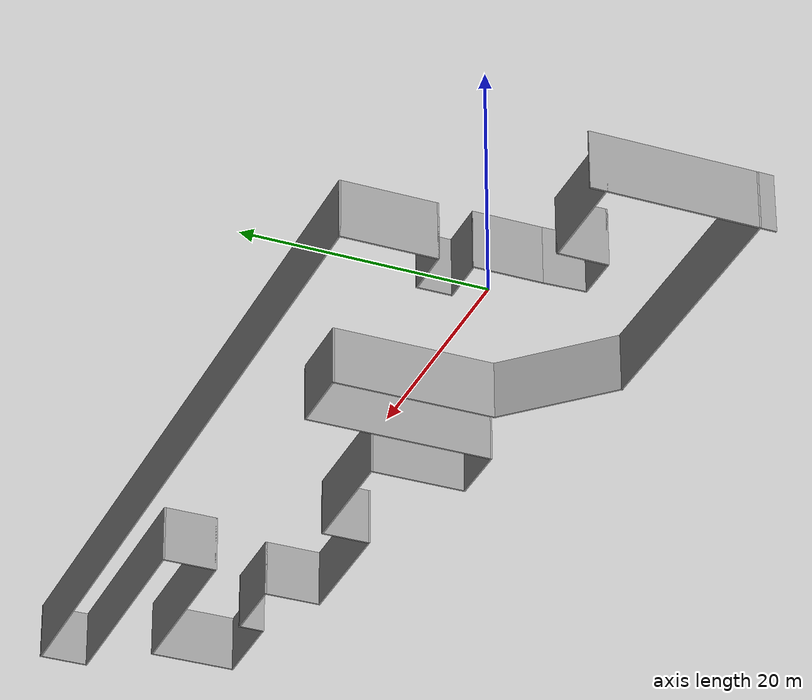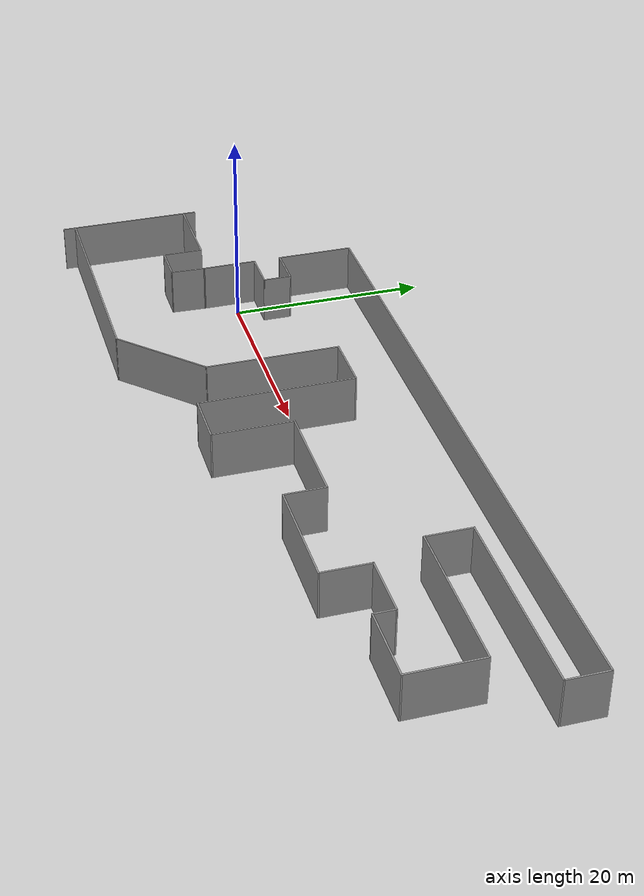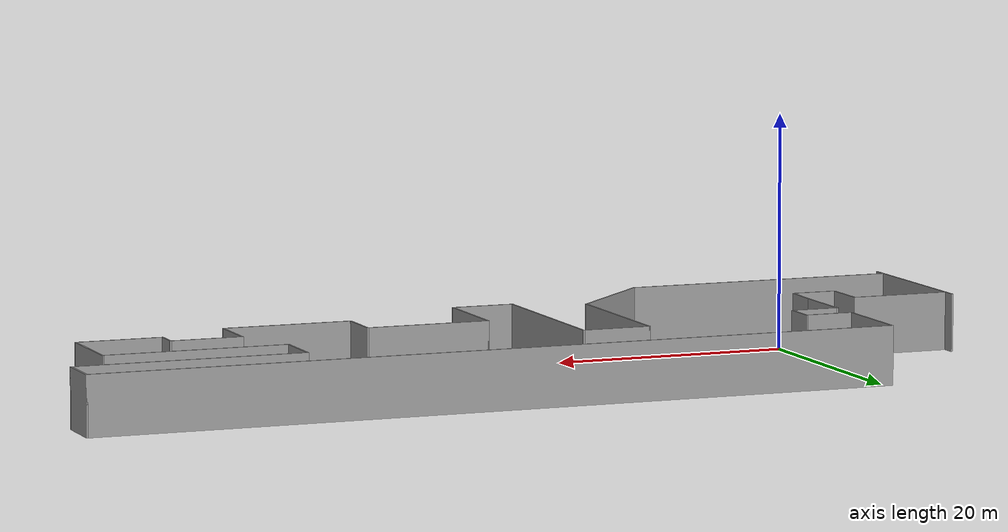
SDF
<?xml version='1.0'?>
<sdf version='1.7'>
  <model name='default'>
    <pose>24.2323 -0.3982 0 0 -0 0</pose>
    <link name='Wall_0'>
      <collision name='Wall_0_Collision'>
        <geometry>
          <box>
            <size>5.75 0.15 5.0</size>
          </box>
        </geometry>
        <pose>0 0 1.25 0 -0 0</pose>
      </collision>
      <visual name='Wall_0_Visual'>
        <pose>0 0 1.25 0 -0 0</pose>
        <geometry>
          <box>
            <size>5.75 0.15 5.0</size>
          </box>
        </geometry>
        <material>
          <script>
            <uri>file://media/materials/scripts/gazebo.material</uri>
            <name>Gazebo/Grey</name>
          </script>
          <ambient>1 1 1 1</ambient>
        </material>
        <meta>
          <layer>0</layer>
        </meta>
      </visual>
      <pose>-28.2523 0.5382 0 0 -0 1.5708</pose>
    </link>
    <link name='Wall_1'>
      <collision name='Wall_1_Collision'>
        <geometry>
          <box>
            <size>4.25 0.15 5.0</size>
          </box>
        </geometry>
        <pose>0 0 1.25 0 -0 0</pose>
      </collision>
      <visual name='Wall_1_Visual'>
        <pose>0 0 1.25 0 -0 0</pose>
        <geometry>
          <box>
            <size>4.25 0.15 5.0</size>
          </box>
        </geometry>
        <material>
          <script>
            <uri>file://media/materials/scripts/gazebo.material</uri>
            <name>Gazebo/Grey</name>
          </script>
          <ambient>1 1 1 1</ambient>
        </material>
        <meta>
          <layer>0</layer>
        </meta>
      </visual>
      <pose>-26.2023 3.3382 0 0 -0 0</pose>
    </link>
    <link name='Wall_10'>
      <collision name='Wall_10_Collision'>
        <geometry>
          <box>
            <size>7.5 0.15 5.0</size>
          </box>
        </geometry>
        <pose>0 0 1.25 0 -0 0</pose>
      </collision>
      <visual name='Wall_10_Visual'>
        <pose>0 0 1.25 0 -0 0</pose>
        <geometry>
          <box>
            <size>7.5 0.15 5.0</size>
          </box>
        </geometry>
        <material>
          <script>
            <uri>file://media/materials/scripts/gazebo.material</uri>
            <name>Gazebo/Grey</name>
          </script>
          <ambient>1 1 1 1</ambient>
        </material>
        <meta>
          <layer>0</layer>
        </meta>
      </visual>
      <pose>36.8477 1.6632 0 0 -0 -1.5708</pose>
    </link>
    <link name='Wall_11'>
      <collision name='Wall_11_Collision'>
        <geometry>
          <box>
            <size>7.5 0.15 5.0</size>
          </box>
        </geometry>
        <pose>0 0 1.25 0 -0 0</pose>
      </collision>
      <visual name='Wall_11_Visual'>
        <pose>0 0 1.25 0 -0 0</pose>
        <geometry>
          <box>
            <size>7.5 0.15 5.0</size>
          </box>
        </geometry>
        <material>
          <script>
            <uri>file://media/materials/scripts/gazebo.material</uri>
            <name>Gazebo/Grey</name>
          </script>
          <ambient>1 1 1 1</ambient>
        </material>
        <meta>
          <layer>0</layer>
        </meta>
      </visual>
      <pose>33.1727 -2.0118 0 0 -0 3.14159</pose>
    </link>
    <link name='Wall_12'>
      <collision name='Wall_12_Collision'>
        <geometry>
          <box>
            <size>2.25 0.15 5.0</size>
          </box>
        </geometry>
        <pose>0 0 1.25 0 -0 0</pose>
      </collision>
      <visual name='Wall_12_Visual'>
        <pose>0 0 1.25 0 -0 0</pose>
        <geometry>
          <box>
            <size>2.25 0.15 5.0</size>
          </box>
        </geometry>
        <material>
          <script>
            <uri>file://media/materials/scripts/gazebo.material</uri>
            <name>Gazebo/Grey</name>
          </script>
          <ambient>1 1 1 1</ambient>
        </material>
        <meta>
          <layer>0</layer>
        </meta>
      </visual>
      <pose>29.4977 -0.9618 0 0 -0 1.5708</pose>
    </link>
    <link name='Wall_13'>
      <collision name='Wall_13_Collision'>
        <geometry>
          <box>
            <size>6.25 0.15 5.0</size>
          </box>
        </geometry>
        <pose>0 0 1.25 0 -0 0</pose>
      </collision>
      <visual name='Wall_13_Visual'>
        <pose>0 0 1.25 0 -0 0</pose>
        <geometry>
          <box>
            <size>6.25 0.15 5.0</size>
          </box>
        </geometry>
        <material>
          <script>
            <uri>file://media/materials/scripts/gazebo.material</uri>
            <name>Gazebo/Grey</name>
          </script>
          <ambient>1 1 1 1</ambient>
        </material>
        <meta>
          <layer>0</layer>
        </meta>
      </visual>
      <pose>26.4477 0.0882 0 0 -0 3.14159</pose>
    </link>
    <link name='Wall_14'>
      <collision name='Wall_14_Collision'>
        <geometry>
          <box>
            <size>5 0.15 5.0</size>
          </box>
        </geometry>
        <pose>0 0 1.25 0 -0 0</pose>
      </collision>
      <visual name='Wall_14_Visual'>
        <pose>0 0 1.25 0 -0 0</pose>
        <geometry>
          <box>
            <size>5 0.15 5.0</size>
          </box>
        </geometry>
        <material>
          <script>
            <uri>file://media/materials/scripts/gazebo.material</uri>
            <name>Gazebo/Grey</name>
          </script>
          <ambient>1 1 1 1</ambient>
        </material>
        <meta>
          <layer>0</layer>
        </meta>
      </visual>
      <pose>23.3977 -2.3368 0 0 -0 -1.5708</pose>
    </link>
    <link name='Wall_15'>
      <collision name='Wall_15_Collision'>
        <geometry>
          <box>
            <size>11.25 0.15 5.0</size>
          </box>
        </geometry>
        <pose>0 0 1.25 0 -0 0</pose>
      </collision>
      <visual name='Wall_15_Visual'>
        <pose>0 0 1.25 0 -0 0</pose>
        <geometry>
          <box>
            <size>11.25 0.15 5.0</size>
          </box>
        </geometry>
        <material>
          <script>
            <uri>file://media/materials/scripts/gazebo.material</uri>
            <name>Gazebo/Grey</name>
          </script>
          <ambient>1 1 1 1</ambient>
        </material>
        <meta>
          <layer>0</layer>
        </meta>
      </visual>
      <pose>17.8477 -4.7618 0 0 -0 3.14159</pose>
    </link>
    <link name='Wall_16'>
      <collision name='Wall_16_Collision'>
        <geometry>
          <box>
            <size>4.25 0.15 5.0</size>
          </box>
        </geometry>
        <pose>0 0 1.25 0 -0 0</pose>
      </collision>
      <visual name='Wall_16_Visual'>
        <pose>0 0 1.25 0 -0 0</pose>
        <geometry>
          <box>
            <size>4.25 0.15 5.0</size>
          </box>
        </geometry>
        <material>
          <script>
            <uri>file://media/materials/scripts/gazebo.material</uri>
            <name>Gazebo/Grey</name>
          </script>
          <ambient>1 1 1 1</ambient>
        </material>
        <meta>
          <layer>0</layer>
        </meta>
      </visual>
      <pose>12.2977 -2.7118 0 0 -0 1.5708</pose>
    </link>
    <link name='Wall_17'>
      <collision name='Wall_17_Collision'>
        <geometry>
          <box>
            <size>10.75 0.15 5.0</size>
          </box>
        </geometry>
        <pose>0 0 1.25 0 -0 0</pose>
      </collision>
      <visual name='Wall_17_Visual'>
        <pose>0 0 1.25 0 -0 0</pose>
        <geometry>
          <box>
            <size>10.75 0.15 5.0</size>
          </box>
        </geometry>
        <material>
          <script>
            <uri>file://media/materials/scripts/gazebo.material</uri>
            <name>Gazebo/Grey</name>
          </script>
          <ambient>1 1 1 1</ambient>
        </material>
        <meta>
          <layer>0</layer>
        </meta>
      </visual>
      <pose>6.99767 -0.6618 0 0 -0 3.14159</pose>
    </link>
    <link name='Wall_18'>
      <collision name='Wall_18_Collision'>
        <geometry>
          <box>
            <size>8.25 0.15 5.0</size>
          </box>
        </geometry>
        <pose>0 0 1.25 0 -0 0</pose>
      </collision>
      <visual name='Wall_18_Visual'>
        <pose>0 0 1.25 0 -0 0</pose>
        <geometry>
          <box>
            <size>8.25 0.15 5.0</size>
          </box>
        </geometry>
        <material>
          <script>
            <uri>file://media/materials/scripts/gazebo.material</uri>
            <name>Gazebo/Grey</name>
          </script>
          <ambient>1 1 1 1</ambient>
        </material>
        <meta>
          <layer>0</layer>
        </meta>
      </visual>
      <pose>1.69767 -4.7118 0 0 -0 -1.5708</pose>
    </link>
    <link name='Wall_19'>
      <collision name='Wall_19_Collision'>
        <geometry>
          <box>
            <size>5.5 0.15 5.0</size>
          </box>
        </geometry>
        <pose>0 0 1.25 0 -0 0</pose>
      </collision>
      <visual name='Wall_19_Visual'>
        <pose>0 0 1.25 0 -0 0</pose>
        <geometry>
          <box>
            <size>5.5 0.15 5.0</size>
          </box>
        </geometry>
        <material>
          <script>
            <uri>file://media/materials/scripts/gazebo.material</uri>
            <name>Gazebo/Grey</name>
          </script>
          <ambient>1 1 1 1</ambient>
        </material>
        <meta>
          <layer>0</layer>
        </meta>
      </visual>
      <pose>-0.977334 -8.7618 0 0 -0 3.14159</pose>
    </link>
    <link name='Wall_2'>
      <collision name='Wall_2_Collision'>
        <geometry>
          <box>
            <size>3 0.15 5.0</size>
          </box>
        </geometry>
        <pose>0 0 1.25 0 -0 0</pose>
      </collision>
      <visual name='Wall_2_Visual'>
        <pose>0 0 1.25 0 -0 0</pose>
        <geometry>
          <box>
            <size>3 0.15 5.0</size>
          </box>
        </geometry>
        <material>
          <script>
            <uri>file://media/materials/scripts/gazebo.material</uri>
            <name>Gazebo/Grey</name>
          </script>
          <ambient>1 1 1 1</ambient>
        </material>
        <meta>
          <layer>0</layer>
        </meta>
      </visual>
      <pose>-24.1523 4.7632 0 0 -0 1.5708</pose>
    </link>
    <link name='Wall_20'>
      <collision name='Wall_20_Collision'>
        <geometry>
          <box>
            <size>16 0.15 5.0</size>
          </box>
        </geometry>
        <pose>0 0 1.25 0 -0 0</pose>
      </collision>
      <visual name='Wall_20_Visual'>
        <pose>0 0 1.25 0 -0 0</pose>
        <geometry>
          <box>
            <size>16 0.15 5.0</size>
          </box>
        </geometry>
        <material>
          <script>
            <uri>file://media/materials/scripts/gazebo.material</uri>
            <name>Gazebo/Grey</name>
          </script>
          <ambient>1 1 1 1</ambient>
        </material>
        <meta>
          <layer>0</layer>
        </meta>
      </visual>
      <pose>-3.65233 -0.8368 0 0 -0 1.5708</pose>
    </link>
    <link name='Wall_21'>
      <collision name='Wall_21_Collision'>
        <geometry>
          <box>
            <size>6 0.15 5.0</size>
          </box>
        </geometry>
        <pose>0 0 1.25 0 -0 0</pose>
      </collision>
      <visual name='Wall_21_Visual'>
        <pose>0 0 1.25 0 -0 0</pose>
        <geometry>
          <box>
            <size>6 0.15 5.0</size>
          </box>
        </geometry>
        <material>
          <script>
            <uri>file://media/materials/scripts/gazebo.material</uri>
            <name>Gazebo/Grey</name>
          </script>
          <ambient>1 1 1 1</ambient>
        </material>
        <meta>
          <layer>0</layer>
        </meta>
      </visual>
      <pose>-6.57733 7.0882 0 0 -0 3.14159</pose>
    </link>
    <link name='Wall_22'>
      <collision name='Wall_22_Collision'>
        <geometry>
          <box>
            <size>13.75 0.15 5.0</size>
          </box>
        </geometry>
        <pose>0 0 1.25 0 -0 0</pose>
      </collision>
      <visual name='Wall_22_Visual'>
        <pose>0 0 1.25 0 -0 0</pose>
        <geometry>
          <box>
            <size>13.75 0.15 5.0</size>
          </box>
        </geometry>
        <material>
          <script>
            <uri>file://media/materials/scripts/gazebo.material</uri>
            <name>Gazebo/Grey</name>
          </script>
          <ambient>1 1 1 1</ambient>
        </material>
        <meta>
          <layer>0</layer>
        </meta>
      </visual>
      <pose>-9.50233 0.2882 0 0 -0 -1.5708</pose>
    </link>
    <link name='Wall_23'>
      <collision name='Wall_23_Collision'>
        <geometry>
          <box>
            <size>10.75 0.15 5.0</size>
          </box>
        </geometry>
        <pose>0 0 1.25 0 -0 0</pose>
      </collision>
      <visual name='Wall_23_Visual'>
        <pose>0 0 1.25 0 -0 0</pose>
        <geometry>
          <box>
            <size>10.75 0.15 5.0</size>
          </box>
        </geometry>
        <material>
          <script>
            <uri>file://media/materials/scripts/gazebo.material</uri>
            <name>Gazebo/Grey</name>
          </script>
          <ambient>1 1 1 1</ambient>
        </material>
        <meta>
          <layer>0</layer>
        </meta>
      </visual>
      <pose>-13.25 -10.2595 0 0 -0 -2.35619</pose>
    </link>
    <link name='Wall_24'>
      <collision name='Wall_24_Collision'>
        <geometry>
          <box>
            <size>24 0.15 5.0</size>
          </box>
        </geometry>
        <pose>0 0 1.25 0 -0 0</pose>
      </collision>
      <visual name='Wall_24_Visual'>
        <pose>0 0 1.25 0 -0 0</pose>
        <geometry>
          <box>
            <size>24 0.15 5.0</size>
          </box>
        </geometry>
        <material>
          <script>
            <uri>file://media/materials/scripts/gazebo.material</uri>
            <name>Gazebo/Grey</name>
          </script>
          <ambient>1 1 1 1</ambient>
        </material>
        <meta>
          <layer>0</layer>
        </meta>
      </visual>
      <pose>-28.9227 -14.0071 0 0 -0 3.14159</pose>
    </link>
    <link name='Wall_25'>
      <collision name='Wall_25_Collision'>
        <geometry>
          <box>
            <size>15.0 0.15 5.0</size>
          </box>
        </geometry>
        <pose>0 0 1.25 0 -0 0</pose>
      </collision>
      <visual name='Wall_25_Visual'>
        <pose>0 0 1.25 0 -0 0</pose>
        <geometry>
          <box>
            <size>15.0 0.15 5.0</size>
          </box>
        </geometry>
        <material>
          <script>
            <uri>file://media/materials/scripts/gazebo.material</uri>
            <name>Gazebo/Grey</name>
          </script>
          <ambient>1 1 1 1</ambient>
        </material>
        <meta>
          <layer>0</layer>
        </meta>
      </visual>
      <pose>-40.8477 -7.83213 0 0 -0 1.5708</pose>
    </link>
    <link name='Wall_26'>
      <collision name='Wall_26_Collision'>
        <geometry>
          <box>
            <size>8.75 0.15 5.0</size>
          </box>
        </geometry>
        <pose>0 0 1.25 0 -0 0</pose>
      </collision>
      <visual name='Wall_26_Visual'>
        <pose>0 0 1.25 0 -0 0</pose>
        <geometry>
          <box>
            <size>8.75 0.15 5.0</size>
          </box>
        </geometry>
        <material>
          <script>
            <uri>file://media/materials/scripts/gazebo.material</uri>
            <name>Gazebo/Grey</name>
          </script>
          <ambient>1 1 1 1</ambient>
        </material>
        <meta>
          <layer>0</layer>
        </meta>
      </visual>
      <pose>-36.5477 -1.65713 0 0 -0 0</pose>
    </link>
    <link name='Wall_27'>
      <collision name='Wall_27_Collision'>
        <geometry>
          <box>
            <size>4.25 0.15 5.0</size>
          </box>
        </geometry>
        <pose>0 0 1.25 0 -0 0</pose>
      </collision>
      <visual name='Wall_27_Visual'>
        <pose>0 0 1.25 0 -0 0</pose>
        <geometry>
          <box>
            <size>4.25 0.15 5.0</size>
          </box>
        </geometry>
        <material>
          <script>
            <uri>file://media/materials/scripts/gazebo.material</uri>
            <name>Gazebo/Grey</name>
          </script>
          <ambient>1 1 1 1</ambient>
        </material>
        <meta>
          <layer>0</layer>
        </meta>
      </visual>
      <pose>-32.2477 -3.70713 0 0 -0 -1.5708</pose>
    </link>
    <link name='Wall_28'>
      <collision name='Wall_28_Collision'>
        <geometry>
          <box>
            <size>4 0.15 5.0</size>
          </box>
        </geometry>
        <pose>0 0 1.25 0 -0 0</pose>
      </collision>
      <visual name='Wall_28_Visual'>
        <pose>0 0 1.25 0 -0 0</pose>
        <geometry>
          <box>
            <size>4 0.15 5.0</size>
          </box>
        </geometry>
        <material>
          <script>
            <uri>file://media/materials/scripts/gazebo.material</uri>
            <name>Gazebo/Grey</name>
          </script>
          <ambient>1 1 1 1</ambient>
        </material>
        <meta>
          <layer>0</layer>
        </meta>
      </visual>
      <pose>-30.3227 -5.75713 0 0 -0 0</pose>
    </link>
    <link name='Wall_29'>
      <collision name='Wall_29_Collision'>
        <geometry>
          <box>
            <size>3.64835 0.15 5.0</size>
          </box>
        </geometry>
        <pose>0 0 1.25 0 -0 0</pose>
      </collision>
      <visual name='Wall_29_Visual'>
        <pose>0 0 1.25 0 -0 0</pose>
        <geometry>
          <box>
            <size>3.64835 0.15 5.0</size>
          </box>
        </geometry>
        <material>
          <script>
            <uri>file://media/materials/scripts/gazebo.material</uri>
            <name>Gazebo/Grey</name>
          </script>
          <ambient>1 1 1 1</ambient>
        </material>
        <meta>
          <layer>0</layer>
        </meta>
      </visual>
      <pose>-28.325 -4.00947 0 0 -0 1.52924</pose>
    </link>
    <link name='Wall_3'>
      <collision name='Wall_3_Collision'>
        <geometry>
          <box>
            <size>4.25 0.15 5.0</size>
          </box>
        </geometry>
        <pose>0 0 1.25 0 -0 0</pose>
      </collision>
      <visual name='Wall_3_Visual'>
        <pose>0 0 1.25 0 -0 0</pose>
        <geometry>
          <box>
            <size>4.25 0.15 5.0</size>
          </box>
        </geometry>
        <material>
          <script>
            <uri>file://media/materials/scripts/gazebo.material</uri>
            <name>Gazebo/Grey</name>
          </script>
          <ambient>1 1 1 1</ambient>
        </material>
        <meta>
          <layer>0</layer>
        </meta>
      </visual>
      <pose>-26.2023 6.1882 0 0 -0 3.14159</pose>
    </link>
    <link name='Wall_4'>
      <collision name='Wall_4_Collision'>
        <geometry>
          <box>
            <size>8 0.15 5.0</size>
          </box>
        </geometry>
        <pose>0 0 1.25 0 -0 0</pose>
      </collision>
      <visual name='Wall_4_Visual'>
        <pose>0 0 1.25 0 -0 0</pose>
        <geometry>
          <box>
            <size>8 0.15 5.0</size>
          </box>
        </geometry>
        <material>
          <script>
            <uri>file://media/materials/scripts/gazebo.material</uri>
            <name>Gazebo/Grey</name>
          </script>
          <ambient>1 1 1 1</ambient>
        </material>
        <meta>
          <layer>0</layer>
        </meta>
      </visual>
      <pose>-28.2523 10.1132 0 0 -0 1.5708</pose>
    </link>
    <link name='Wall_5'>
      <collision name='Wall_5_Collision'>
        <geometry>
          <box>
            <size>69.25 0.15 5.0</size>
          </box>
        </geometry>
        <pose>0 0 1.25 0 -0 0</pose>
      </collision>
      <visual name='Wall_5_Visual'>
        <pose>0 0 1.25 0 -0 0</pose>
        <geometry>
          <box>
            <size>69.25 0.15 5.0</size>
          </box>
        </geometry>
        <material>
          <script>
            <uri>file://media/materials/scripts/gazebo.material</uri>
            <name>Gazebo/Grey</name>
          </script>
          <ambient>1 1 1 1</ambient>
        </material>
        <meta>
          <layer>0</layer>
        </meta>
      </visual>
      <pose>6.29767 14.0382 0 0 -0 0</pose>
    </link>
    <link name='Wall_6'>
      <collision name='Wall_6_Collision'>
        <geometry>
          <box>
            <size>4.25 0.15 5.0</size>
          </box>
        </geometry>
        <pose>0 0 1.25 0 -0 0</pose>
      </collision>
      <visual name='Wall_6_Visual'>
        <pose>0 0 1.25 0 -0 0</pose>
        <geometry>
          <box>
            <size>4.25 0.15 5.0</size>
          </box>
        </geometry>
        <material>
          <script>
            <uri>file://media/materials/scripts/gazebo.material</uri>
            <name>Gazebo/Grey</name>
          </script>
          <ambient>1 1 1 1</ambient>
        </material>
        <meta>
          <layer>0</layer>
        </meta>
      </visual>
      <pose>40.8477 11.9882 0 0 -0 -1.5708</pose>
    </link>
    <link name='Wall_7'>
      <collision name='Wall_7_Collision'>
        <geometry>
          <box>
            <size>19.75 0.15 5.0</size>
          </box>
        </geometry>
        <pose>0 0 1.25 0 -0 0</pose>
      </collision>
      <visual name='Wall_7_Visual'>
        <pose>0 0 1.25 0 -0 0</pose>
        <geometry>
          <box>
            <size>19.75 0.15 5.0</size>
          </box>
        </geometry>
        <material>
          <script>
            <uri>file://media/materials/scripts/gazebo.material</uri>
            <name>Gazebo/Grey</name>
          </script>
          <ambient>1 1 1 1</ambient>
        </material>
        <meta>
          <layer>0</layer>
        </meta>
      </visual>
      <pose>31.0477 9.9382 0 0 -0 3.14159</pose>
    </link>
    <link name='Wall_8'>
      <collision name='Wall_8_Collision'>
        <geometry>
          <box>
            <size>4.75 0.15 5.0</size>
          </box>
        </geometry>
        <pose>0 0 1.25 0 -0 0</pose>
      </collision>
      <visual name='Wall_8_Visual'>
        <pose>0 0 1.25 0 -0 0</pose>
        <geometry>
          <box>
            <size>4.75 0.15 5.0</size>
          </box>
        </geometry>
        <material>
          <script>
            <uri>file://media/materials/scripts/gazebo.material</uri>
            <name>Gazebo/Grey</name>
          </script>
          <ambient>1 1 1 1</ambient>
        </material>
        <meta>
          <layer>0</layer>
        </meta>
      </visual>
      <pose>21.2477 7.6382 0 0 -0 -1.5708</pose>
    </link>
    <link name='Wall_9'>
      <collision name='Wall_9_Collision'>
        <geometry>
          <box>
            <size>15.75 0.15 5.0</size>
          </box>
        </geometry>
        <pose>0 0 1.25 0 -0 0</pose>
      </collision>
      <visual name='Wall_9_Visual'>
        <pose>0 0 1.25 0 -0 0</pose>
        <geometry>
          <box>
            <size>15.75 0.15 5.0</size>
          </box>
        </geometry>
        <material>
          <script>
            <uri>file://media/materials/scripts/gazebo.material</uri>
            <name>Gazebo/Grey</name>
          </script>
          <ambient>1 1 1 1</ambient>
        </material>
        <meta>
          <layer>0</layer>
        </meta>
      </visual>
      <pose>29.0477 5.3382 0 0 -0 0</pose>
    </link>
    <static>1</static>
  </model>
</sdf>
